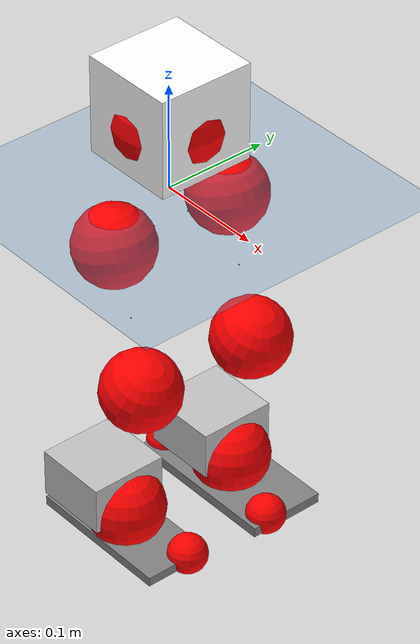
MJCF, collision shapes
<mujoco model="pi_12dof_release_v1">
  <compiler angle="radian" assetdir="assets" balanceinertia="true" inertiafromgeom="false"/>

  <option timestep="0.005" density="1.2" viscosity="2e-05"/>

  <size nkey="1"/>

  <visual>
    <quality shadowsize="8192"/>
    <map shadowclip="0.5"/>
  </visual>

  <default>
    <default class="/">
      <joint armature="0.01" damping="0.01" frictionloss="0.01"/>
      <geom contype="0" conaffinity="0" group="1" solref="-1000 -80"/>
      <site size="0.01 0.005 0.005" group="5"/>
      <general forcelimited="true" biastype="affine" gainprm="20" biasprm="0 -20 -0.5"/>
      <default class="foot">
        <geom size="0.0845 0.036 0.005" type="box" condim="6" group="4" priority="1" friction="0.9 0.2 0.2" solimp="0.015 1 0.005"/>
      </default>
      <default class="reward_collision_sphere">
        <geom group="5" rgba="1 0 0 1"/>
      </default>
    </default>
  </default>

  <asset>
    <texture type="skybox" colorspace="auto" name="//unnamed_texture_0" builtin="gradient" rgb1="0.95 0.95 0.95" rgb2="0.95 0.95 0.95" width="100" height="600"/>
    <texture type="2d" colorspace="auto" name="texplane" builtin="checker" rgb1="0.345 0.575 0.748" rgb2="0.345 0.575 0.748" markrgb="1 1 1" width="512" height="512"/>
    <material name="MatPlane" class="/" texture="texplane" texuniform="true" texrepeat="2 2" specular="0.9"/>
    <mesh name="baselink_1" class="/" file="baselink_1.STL"/>
    <mesh name="r_hip_pitch_link" class="/" file="r_hip_pitch_link.STL"/>
    <mesh name="r_hip_roll_link" class="/" file="r_hip_roll_link.STL"/>
    <mesh name="r_thigh_link" class="/" file="r_thigh_link.STL"/>
    <mesh name="r_calf_link" class="/" file="r_calf_link.STL"/>
    <mesh name="r_ankle_pitch_link" class="/" file="r_ankle_pitch_link.STL"/>
    <mesh name="r_ankle_roll_link" class="/" file="r_ankle_roll_link.STL"/>
    <mesh name="l_hip_pitch_link" class="/" file="l_hip_pitch_link.STL"/>
    <mesh name="l_hip_roll_link" class="/" file="l_hip_roll_link.STL"/>
    <mesh name="l_thigh_link" class="/" file="l_thigh_link.STL"/>
    <mesh name="l_calf_link" class="/" file="l_calf_link.STL"/>
    <mesh name="l_ankle_pitch_link" class="/" file="l_ankle_pitch_link.STL"/>
    <mesh name="l_ankle_roll_link" class="/" file="l_ankle_roll_link.STL"/>
  </asset>

  <worldbody>
    <geom name="floor" class="/" size="100 100 0.125" type="plane" group="0" material="MatPlane"/>
    <light name="toplight_shadow" class="/" pos="0 0 5" dir="0.0990148 0.0990148 -0.990148" type="directional" ambient="0.04 0.04 0.04" diffuse="0.55 0.55 0.55" specular="0.12 0.12 0.12"/>
    <light name="toplight_fill" class="/" pos="0 0 5" dir="0.0990148 0.0990148 -0.990148" type="directional" castshadow="false" ambient="0.04 0.04 0.04" diffuse="0.3 0.3 0.3" specular="0.08 0.08 0.08"/>
    <body name="trunk" pos="0.00050871 0.000475771 0.000942361" quat="1 0.000305679 -0.000175208 -0.000181283">
      <inertial pos="0.00328522 -0.00147755 0.0394641" quat="0.695327 0.00971759 0.00948887 0.718566" mass="1.67698" diaginertia="0.0104869 0.0024772 0.00377147"/>
      <joint name="//unnamed_joint_0" type="free"/>
      <geom name="//unnamed_geom_1" class="/" type="mesh" density="0" rgba="1 1 1 1" mesh="baselink_1"/>
      <geom name="//unnamed_geom_2" class="/" size="0.0459883 0.0459883 0.0459883" pos="0 0 0.0781136" type="box" rgba="1 1 1 1"/>
      <geom name="//unnamed_geom_3" class="reward_collision_sphere" size="0.0505871" pos="0 0 0.0683494"/>
      <site name="imu" class="/" pos="-0.00466676 -0.00748975 0.00259444" size="0.00919766"/>
      <camera name="track" class="/" pos="0 -1.5451 0" quat="0.707107 0.707107 0 0" mode="trackcom"/>
      <camera name="ego_camera" class="/" pos="0.0757747 0 0.175756" quat="-0.5 -0.5 0.5 0.5"/>
      <body name="r_hip_pitch_link" pos="2.66967e-05 -0.0175009 -0.0316961" quat="0.992247 0.000449807 -0.124281 8.05497e-05">
        <inertial pos="0.00201654 -0.043253 -0.000175193" quat="-0.0181909 0.705676 -0.0302922 0.707653" mass="0.291156" diaginertia="0.000115613 2.72836e-05 7.36424e-05"/>
        <joint name="r_hip_pitch_joint" class="/" pos="0 0 0" axis="0.00164145 -0.999995 0.00253946" range="-1.75325 1.25321" armature="0.00962556" damping="0.0158581" frictionloss="0.00918704"/>
        <geom name="//unnamed_geom_4" class="/" type="mesh" density="0" rgba="0.75294 0.75294 0.75294 1" mesh="r_hip_pitch_link"/>
        <geom name="//unnamed_geom_5" class="/" size="0.000459883 0.000459883 0.000459883" type="box" rgba="0.75294 0.75294 0.75294 1"/>
        <body name="r_hip_roll_link" pos="0.000508539 -0.0428346 0.000294848" quat="1 4.7792e-06 -5.34983e-06 -3.87226e-06">
          <inertial pos="-0.00140373 -0.00110749 -0.0616292" quat="0.706045 -0.0787684 -0.0826005 0.698909" mass="0.299276" diaginertia="0.000352803 7.71589e-05 0.000114258"/>
          <joint name="r_hip_roll_joint" class="/" pos="0 0 0" axis="-0.999998 -0.00145684 -0.00140383" range="-0.113813 0.510972" armature="0.00897809" damping="0.00655433" frictionloss="0.00934457"/>
          <geom name="//unnamed_geom_6" class="/" type="mesh" density="0" rgba="0.75294 0.75294 0.75294 1" mesh="r_hip_roll_link"/>
          <geom name="//unnamed_geom_7" class="/" size="0.000459883 0.000459883 0.000459883" type="box" rgba="0.75294 0.75294 0.75294 1"/>
          <geom name="//unnamed_geom_8" class="reward_collision_sphere" size="0.0367907"/>
          <body name="r_thigh_link" pos="0.00139882 0.00200938 -0.0676778" quat="1 7.38829e-05 -9.45862e-06 -0.000107036">
            <inertial pos="0.000218576 0.00172095 -0.0472235" quat="0.737086 0.675798 0.000708262 -9.87539e-05" mass="0.0884692" diaginertia="0.000130462 2.59297e-05 5.12801e-05"/>
            <joint name="r_thigh_joint" class="/" pos="0 0 0" axis="0.00165451 0.000600211 -0.999998" range="-0.30331 0.583449" armature="0.00943662" damping="0.00280465" frictionloss="0.00849691"/>
            <geom name="//unnamed_geom_9" class="/" type="mesh" density="0" rgba="0.75294 0.75294 0.75294 1" mesh="r_thigh_link"/>
            <geom name="//unnamed_geom_10" class="/" size="0.000459883 0.000459883 0.000459883" type="box" rgba="0.75294 0.75294 0.75294 1"/>
            <body name="r_calf_link" pos="-0.00132066 -0.00252987 -0.0676216" quat="0.947648 -1.34131e-05 0.319317 -4.95827e-05">
              <inertial pos="-6.32743e-05 0.000145195 -0.0680433" quat="0.999989 -7.96153e-05 0.00266137 0.00373857" mass="0.642227" diaginertia="0.00379761 0.000965823 0.000157829"/>
              <joint name="r_calf_joint" class="/" pos="0 0 0" axis="2.78417e-05 -1 -2.81904e-05" range="-1.63648 0.646091" armature="0.00929646" damping="0.0103103" frictionloss="0.00926629"/>
              <geom name="//unnamed_geom_11" class="/" type="mesh" density="0" rgba="0.75294 0.75294 0.75294 1" mesh="r_calf_link"/>
              <geom name="//unnamed_geom_12" class="/" size="0.000459883 0.000459883 0.000459883" type="box" rgba="0.75294 0.75294 0.75294 1"/>
              <geom name="//unnamed_geom_13" class="reward_collision_sphere" size="0.0367907"/>
              <body name="r_ankle_pitch_link" pos="-7.9462e-06 -6.042e-05 -0.136471" quat="0.980073 0.000109638 -0.198638 9.28678e-05">
                <inertial pos="0.00463167 0.00287356 -0.00135451" quat="-0.00071867 0.702693 0.00168398 0.711491" mass="0.138143" diaginertia="0.000331604 6.17251e-05 0.000107563"/>
                <joint name="r_ankle_pitch_joint" class="/" pos="0 0 0" axis="-0.0039597 -0.999992 0.000283121" range="-1.30045 0.527515" armature="0.00916479" damping="0.00813534" frictionloss="0.00937384"/>
                <geom name="//unnamed_geom_14" class="/" type="mesh" density="0" rgba="0.75294 0.75294 0.75294 1" mesh="r_ankle_pitch_link"/>
                <geom name="//unnamed_geom_15" class="/" size="0.0358709 0.0367907 0.0229942" type="box" rgba="0.75294 0.75294 0.75294 1"/>
                <body name="r_ankle_roll_link" pos="0.0772479 0.00266354 0.000321616" quat="1 -0.000105939 -1.39857e-05 -4.32894e-05">
                  <inertial pos="-0.0240321 -0.000271168 -0.0126818" quat="0.559692 0.434717 0.433337 0.556763" mass="0.396525" diaginertia="0.0011565 0.000283112 0.000244329"/>
                  <joint name="r_ankle_roll_joint" class="/" pos="0 0 0" axis="-0.999989 -0.00050056 -0.00468113" stiffness="0.00059728" range="-0.166841 0.143877" armature="0.00874609" damping="0.00596898" frictionloss="0.00962802"/>
                  <geom name="//unnamed_geom_16" class="/" type="mesh" density="0" rgba="0.75294 0.75294 0.75294 1" mesh="r_ankle_roll_link"/>
                  <geom name="//unnamed_geom_17" class="/" type="mesh" rgba="0.75294 0.75294 0.75294 1" mesh="r_ankle_roll_link"/>
                  <geom name="right_foot" class="foot" size="0.0714451 0.0312943 0.00438803" pos="-0.0515268 0 -0.0429625"/>
                  <geom name="//unnamed_geom_19" class="reward_collision_sphere" size="0.0367907" pos="-0.0505165 0 -0.0195284"/>
                  <geom name="//unnamed_geom_20" class="reward_collision_sphere" size="0.0183953" pos="0.0151549 0.015451 -0.0390568"/>
                  <geom name="//unnamed_geom_21" class="reward_collision_sphere" size="0.0183953" pos="-0.12124 0.015451 -0.0390568"/>
                  <site name="right_foot" class="foot" pos="-0.0515268 0 -0.0429625" size="0.00919766"/>
                </body>
              </body>
            </body>
          </body>
        </body>
      </body>
      <body name="l_hip_pitch_link" pos="0.000223343 0.0187133 -0.0327292" quat="0.992197 3.25429e-05 -0.124679 -1.59149e-05">
        <inertial pos="0.000857361 0.0412427 -0.000756263" quat="-0.0377393 0.704219 0.0296577 0.708358" mass="0.304503" diaginertia="0.000135092 2.90379e-05 8.89465e-05"/>
        <joint name="l_hip_pitch_joint" class="/" pos="0 0 0" axis="-0.00513597 0.999986 -0.00111324" range="-1.25383 1.75136" armature="0.00905387" damping="0.0140129" frictionloss="0.00896742"/>
        <geom name="//unnamed_geom_22" class="/" type="mesh" density="0" rgba="0.75294 0.75294 0.75294 1" mesh="l_hip_pitch_link"/>
        <geom name="//unnamed_geom_23" class="/" size="0.000459883 0.000459883 0.000459883" type="box" rgba="0.75294 0.75294 0.75294 1"/>
        <body name="l_hip_roll_link" pos="0.000756625 0.0430803 0.000333172" quat="1 -5.4208e-05 -6.90966e-05 0.00015623">
          <inertial pos="-0.00148109 0.000373749 -0.0613603" quat="0.699205 -0.0726521 -0.0767911 0.707063" mass="0.297524" diaginertia="0.00034331 7.5428e-05 0.00011195"/>
          <joint name="l_hip_roll_joint" class="/" pos="0 0 0" axis="-1 0.000379307 0.000297805" range="-0.52079 0.113027" armature="0.00953038" damping="0" frictionloss="0.00921369"/>
          <geom name="//unnamed_geom_24" class="/" type="mesh" density="0" rgba="0.75294 0.75294 0.75294 1" mesh="l_hip_roll_link"/>
          <geom name="//unnamed_geom_25" class="/" size="0.000459883 0.000459883 0.000459883" type="box" rgba="0.75294 0.75294 0.75294 1"/>
          <geom name="//unnamed_geom_26" class="reward_collision_sphere" size="0.0367907"/>
          <body name="l_thigh_link" pos="0.000737756 -0.00147591 -0.0674918" quat="1 8.11831e-05 0.000102439 -9.2129e-05">
            <inertial pos="-0.000459343 -0.000651315 -0.0472656" quat="0.675426 0.737428 0.000156972 -0.000197136" mass="0.0881544" diaginertia="0.000131896 2.58411e-05 5.17264e-05"/>
            <joint name="l_thigh_joint" class="/" pos="0 0 0" axis="-0.000670665 0.000496561 -1" range="-0.597711 0.315995" armature="0.00910805" damping="0.00382792" frictionloss="0.00901986"/>
            <geom name="//unnamed_geom_27" class="/" type="mesh" density="0" rgba="0.75294 0.75294 0.75294 1" mesh="l_thigh_link"/>
            <geom name="//unnamed_geom_28" class="/" size="0.000459883 0.000459883 0.000459883" type="box" rgba="0.75294 0.75294 0.75294 1"/>
            <body name="l_calf_link" pos="-0.000508764 0.000116256 -0.0693242" quat="0.947674 8.61391e-05 0.319239 8.63579e-05">
              <inertial pos="0.000440145 0.00258231 -0.0683297" quat="0.999984 0.00307915 -0.000169077 0.00473458" mass="0.616445" diaginertia="0.00362359 0.000941911 0.00015255"/>
              <joint name="l_calf_joint" class="/" pos="0 0 0" axis="-0.00105847 0.999999 0.000632231" range="-0.622505 1.66678" armature="0.00918981" damping="0.00739739" frictionloss="0.00901784"/>
              <geom name="//unnamed_geom_29" class="/" type="mesh" density="0" rgba="0.75294 0.75294 0.75294 1" mesh="l_calf_link"/>
              <geom name="//unnamed_geom_30" class="/" size="0.000459883 0.000459883 0.000459883" type="box" rgba="0.75294 0.75294 0.75294 1"/>
              <geom name="//unnamed_geom_31" class="reward_collision_sphere" size="0.0367907"/>
              <body name="l_ankle_pitch_link" pos="-3.033e-05 0.000846024 -0.13624" quat="0.980079 -3.45678e-05 -0.198609 -8.61038e-06">
                <inertial pos="0.00576751 -0.00136942 5.29463e-05" quat="-0.00222584 0.707073 0.00220839 0.707134" mass="0.136683" diaginertia="0.000320018 6.08645e-05 0.000106228"/>
                <joint name="l_ankle_pitch_joint" class="/" pos="0 0 0" axis="-0.000603185 1 0.000223073" range="-0.521462 1.29307" armature="0.00923335" damping="0.00256077" frictionloss="0.00935688"/>
                <geom name="//unnamed_geom_32" class="/" type="mesh" density="0" rgba="0.75294 0.75294 0.75294 1" mesh="l_ankle_pitch_link"/>
                <geom name="//unnamed_geom_33" class="/" size="0.0358709 0.0367907 0.0229942" type="box" rgba="0.75294 0.75294 0.75294 1"/>
                <body name="l_ankle_roll_link" pos="0.0767703 0.000454366 -0.000670761" quat="1 -0.000132112 2.40483e-05 7.47751e-05">
                  <inertial pos="-0.0247645 -0.000280254 -0.0142717" quat="0.561709 0.431084 0.432954 0.557854" mass="0.408658" diaginertia="0.00119559 0.000286124 0.000252916"/>
                  <joint name="l_ankle_roll_joint" class="/" pos="0 0 0" axis="-1 -0.000202172 9.07731e-05" range="-0.156559 0.151562" armature="0.0090119" damping="0.00959858" frictionloss="0.00919288"/>
                  <geom name="//unnamed_geom_34" class="/" type="mesh" density="0" rgba="0.75294 0.75294 0.75294 1" mesh="l_ankle_roll_link"/>
                  <geom name="//unnamed_geom_35" class="/" type="mesh" rgba="0.75294 0.75294 0.75294 1" mesh="l_ankle_roll_link"/>
                  <geom name="left_foot" class="foot" size="0.0772149 0.0373114 0.00476554" pos="-0.0515268 0 -0.0429625"/>
                  <geom name="//unnamed_geom_37" class="reward_collision_sphere" size="0.0367907" pos="-0.0505165 0 -0.0195284"/>
                  <geom name="//unnamed_geom_38" class="reward_collision_sphere" size="0.0183953" pos="0.0151549 -0.015451 -0.0390568"/>
                  <geom name="//unnamed_geom_39" class="reward_collision_sphere" size="0.0183953" pos="-0.12124 -0.015451 -0.0390568"/>
                  <site name="left_foot" class="foot" pos="-0.0515268 0 -0.0429625" size="0.00919766"/>
                </body>
              </body>
            </body>
          </body>
        </body>
      </body>
    </body>
  </worldbody>

  <contact>
    <pair class="/" geom1="floor" geom2="right_foot" name="//unnamed_contact_1"/>
    <pair class="/" geom1="floor" geom2="left_foot" name="//unnamed_contact_0"/>
  </contact>

  <actuator>
    <general name="r_hip_pitch_joint" class="/" joint="r_hip_pitch_joint" forcerange="-19.2884 19.2884" gainprm="18.4219" biasprm="0 -18.4219 -0.463818"/>
    <general name="r_hip_roll_joint" class="/" joint="r_hip_roll_joint" forcerange="-18.9742 18.9742" gainprm="18.4219" biasprm="0 -18.4219 -0.463818"/>
    <general name="r_thigh_joint" class="/" joint="r_thigh_joint" forcerange="-18.6527 18.6527" gainprm="18.4219" biasprm="0 -18.4219 -0.463818"/>
    <general name="r_calf_joint" class="/" joint="r_calf_joint" forcerange="-19.5456 19.5456" gainprm="18.4219" biasprm="0 -18.4219 -0.463818"/>
    <general name="r_ankle_pitch_joint" class="/" joint="r_ankle_pitch_joint" forcerange="-18.9111 18.9111" gainprm="18.4219" biasprm="0 -18.4219 -0.463818"/>
    <general name="r_ankle_roll_joint" class="/" joint="r_ankle_roll_joint" forcerange="-18.6159 18.6159" gainprm="18.4219" biasprm="0 -18.4219 -0.463818"/>
    <general name="l_hip_pitch_joint" class="/" joint="l_hip_pitch_joint" forcerange="-19.6874 19.6874" gainprm="18.4219" biasprm="0 -18.4219 -0.463818"/>
    <general name="l_hip_roll_joint" class="/" joint="l_hip_roll_joint" forcerange="-19.505 19.505" gainprm="18.4219" biasprm="0 -18.4219 -0.463818"/>
    <general name="l_thigh_joint" class="/" joint="l_thigh_joint" forcerange="-18.7926 18.7926" gainprm="18.4219" biasprm="0 -18.4219 -0.463818"/>
    <general name="l_calf_joint" class="/" joint="l_calf_joint" forcerange="-19.4076 19.4076" gainprm="18.4219" biasprm="0 -18.4219 -0.463818"/>
    <general name="l_ankle_pitch_joint" class="/" joint="l_ankle_pitch_joint" forcerange="-18.677 18.677" gainprm="18.4219" biasprm="0 -18.4219 -0.463818"/>
    <general name="l_ankle_roll_joint" class="/" joint="l_ankle_roll_joint" forcerange="-20.4689 20.4689" gainprm="18.4219" biasprm="0 -18.4219 -0.463818"/>
  </actuator>

  <sensor>
    <gyro site="imu" name="imu_angular_velocity"/>
    <velocimeter site="imu" name="imu_linear_velocity"/>
    <framelinvel objtype="site" objname="left_foot" name="left_foot_global_linear_velocity"/>
    <framelinvel objtype="site" objname="right_foot" name="right_foot_global_linear_velocity"/>
  </sensor>

  <keyframe>
    <key name="home" qpos="0 0 0.291 1 0 0 0 0.4 0 0 -0.8 0.4 0 -0.4 0 0 0.8 -0.4 0"/>
  </keyframe>
</mujoco>
